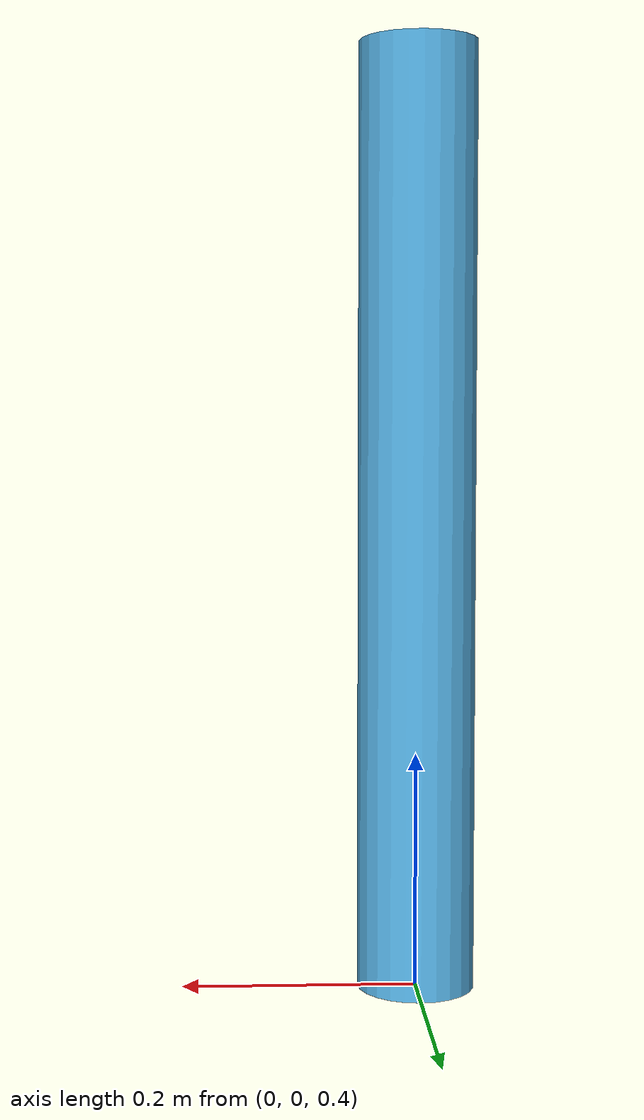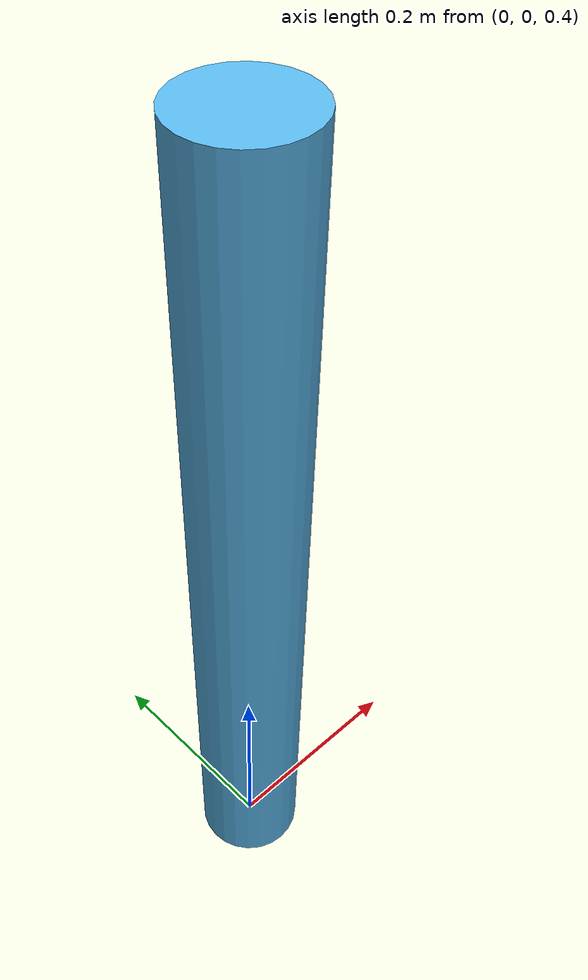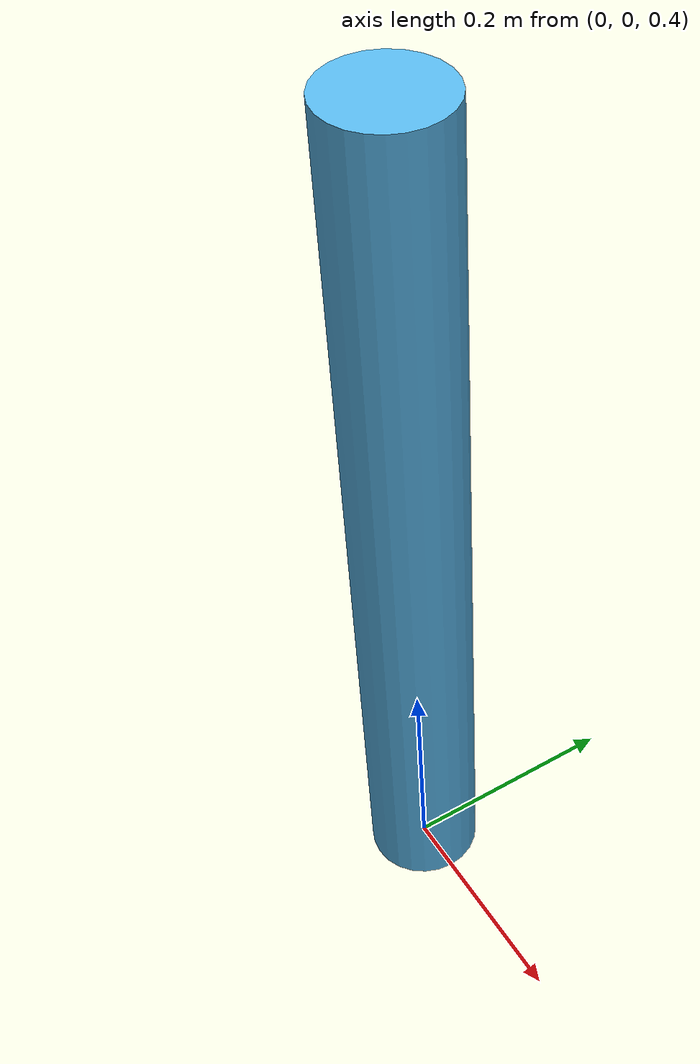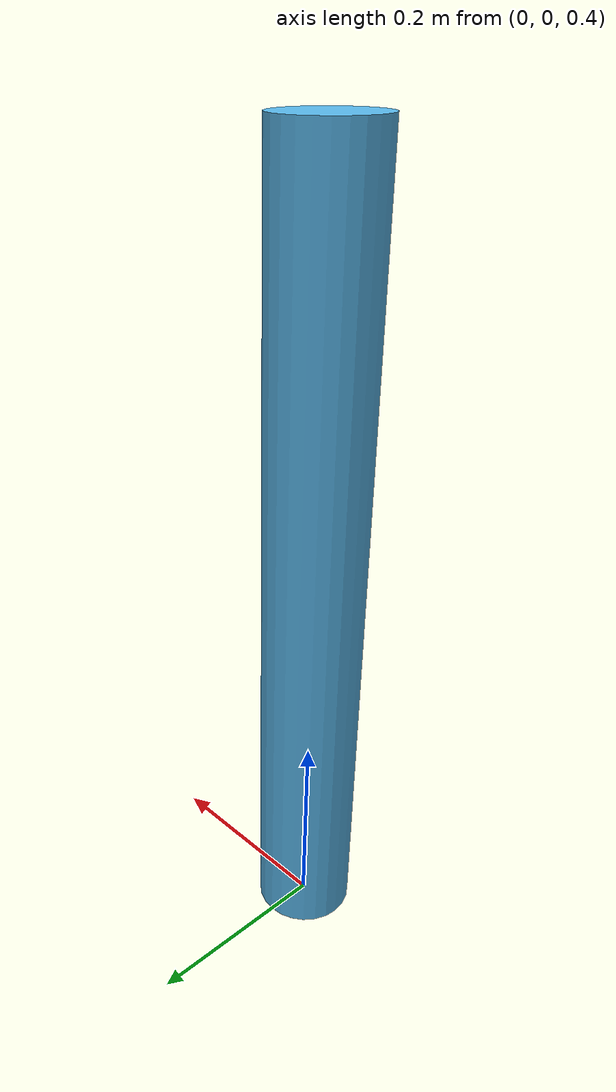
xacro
<?xml version="1.0"?>
<robot name="harness_arm" xmlns:xacro="http://www.ros.org/wiki/xacro">
  <xacro:arg name="prefix" default="a_"/>
  <xacro:property name="link_length" value="0.4"/>

  <xacro:macro name="segment" params="name length radius:=0.05">
    <link name="${name}">
      <visual>
        <origin xyz="0 0 ${length / 2}"/>
        <geometry>
          <cylinder length="${length}" radius="${radius}"/>
        </geometry>
      </visual>
      <inertial>
        <mass value="${length * 2.5}"/>
        <inertia ixx="0.01" ixy="0" ixz="0" iyy="0.01" iyz="0" izz="0.01"/>
      </inertial>
    </link>
  </xacro:macro>

  <link name="$(arg prefix)base"/>
  <xacro:segment name="$(arg prefix)upper" length="${link_length * 2}"/>

  <joint name="$(arg prefix)shoulder" type="revolute">
    <parent link="$(arg prefix)base"/>
    <child link="$(arg prefix)upper"/>
    <origin xyz="0 0 ${link_length}" rpy="0 0 0"/>
    <axis xyz="0 1 0"/>
    <limit lower="-1.57" upper="1.57" effort="10.0" velocity="1.0"/>
  </joint>
</robot>
